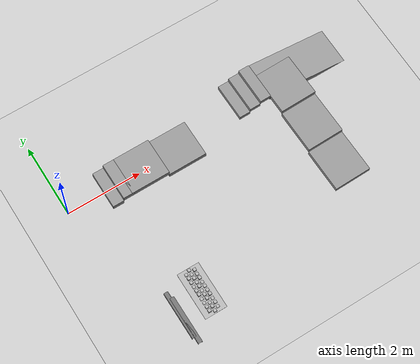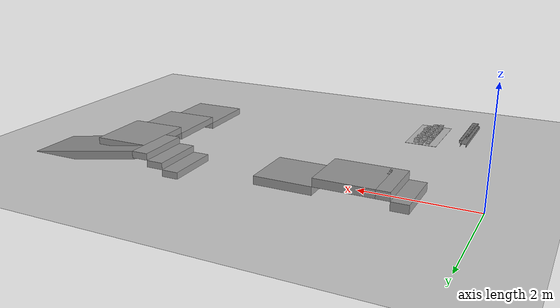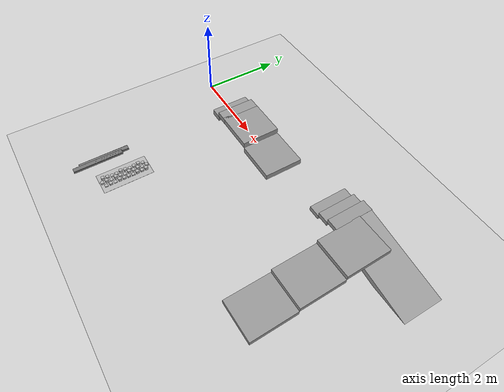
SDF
<sdf version="1.6">
 <world name="default">
  <light name="sun" type="directional">
   <pose>0 0 10 0 -0 0</pose>
   <diffuse>0.8 0.8 0.8 1</diffuse>
   <specular>0.1 0.1 0.1 1</specular>
   <attenuation>
    <range>1000</range>
    <constant>0.9</constant>
    <linear>0.01</linear>
    <quadratic>0.001</quadratic>
   </attenuation>
   <direction>-0.5 0.5 -1</direction>
  </light>
  <model name="ground_plane">
   <static>1</static>
   <link name="link">
    <collision name="collision">
     <geometry><plane><normal>0 0 1</normal><size>100 100</size></plane></geometry>
     <surface><friction><ode><mu>100</mu><mu2>50</mu2></ode></friction></surface>
    </collision>
    <visual name="visual">
     <cast_shadows>0</cast_shadows>
     <geometry><plane><normal>0 0 1</normal><size>100 100</size></plane></geometry>
     <material>
      <script><uri>file://media/materials/scripts/gazebo.material</uri><name>Gazebo/Grey</name></script>
     </material>
    </visual>
   </link>
  </model>
  <gravity>0 0 -9.8</gravity>
  <magnetic_field>6e-06 2.3e-05 -4.2e-05</magnetic_field>
  <atmosphere type="adiabatic"/>
  <physics name="default_physics" default="0" type="ode">
   <max_step_size>0.001</max_step_size>
   <real_time_factor>1</real_time_factor>
   <real_time_update_rate>1000</real_time_update_rate>
  </physics>
  <scene><ambient>0.4 0.4 0.4 1</ambient><background>0.7 0.7 0.7 1</background><shadows>1</shadows></scene>
  <spherical_coordinates>
   <surface_model>EARTH_WGS84</surface_model>
   <latitude_deg>0</latitude_deg>
   <longitude_deg>0</longitude_deg>
   <elevation>0</elevation>
   <heading_deg>0</heading_deg>
  </spherical_coordinates>
  <model name="frc2016_roughterrain">
   <static>1</static>
   <link name="link">
    <visual name="platform">
     <pose>0 0 0.08269 0 -0 0</pose>
     <geometry><box><size>1.27 0.5969 0.003175</size></box></geometry>
    </visual>
    <collision name="platform">
     <pose>0 0 0.08269 0 -0 0</pose>
     <geometry><box><size>1.27 0.5969 0.003175</size></box></geometry>
    </collision>
    <visual name="row1_block1_sm">
     <pose>0.51435 0.1143 0.09698 0 -0 0</pose>
     <geometry><box><size>0.0762 0.0762 0.0254</size></box></geometry>
    </visual>
    <collision name="row1_block1_sm">
     <pose>0.51435 0.1143 0.09698 0 -0 0</pose>
     <geometry><box><size>0.0762 0.0762 0.0254</size></box></geometry>
    </collision>
    <visual name="row1_block2_lg">
     <pose>0.40005 0.1143 0.12238 0 -0 0</pose>
     <geometry><box><size>0.0762 0.0762 0.0762</size></box></geometry>
    </visual>
    <collision name="row1_block2_lg">
     <pose>0.40005 0.1143 0.12238 0 -0 0</pose>
     <geometry><box><size>0.0762 0.0762 0.0762</size></box></geometry>
    </collision>
    <visual name="row1_block3_md">
     <pose>0.28575 0.1143 0.10968 0 -0 0</pose>
     <geometry><box><size>0.0762 0.0762 0.0508</size></box></geometry>
    </visual>
    <collision name="row1_block3_md">
     <pose>0.28575 0.1143 0.10968 0 -0 0</pose>
     <geometry><box><size>0.0762 0.0762 0.0508</size></box></geometry>
    </collision>
    <visual name="row1_block4_sm">
     <pose>0.17145 0.1143 0.09698 0 -0 0</pose>
     <geometry><box><size>0.0762 0.0762 0.0254</size></box></geometry>
    </visual>
    <collision name="row1_block4_sm">
     <pose>0.17145 0.1143 0.09698 0 -0 0</pose>
     <geometry><box><size>0.0762 0.0762 0.0254</size></box></geometry>
    </collision>
    <visual name="row1_block5_md">
     <pose>0.05715 0.1143 0.10968 0 -0 0</pose>
     <geometry><box><size>0.0762 0.0762 0.0508</size></box></geometry>
    </visual>
    <collision name="row1_block5_md">
     <pose>0.05715 0.1143 0.10968 0 -0 0</pose>
     <geometry><box><size>0.0762 0.0762 0.0508</size></box></geometry>
    </collision>
    <visual name="row1_block6_lg">
     <pose>-0.05715 0.1143 0.12238 0 -0 0</pose>
     <geometry><box><size>0.0762 0.0762 0.0762</size></box></geometry>
    </visual>
    <collision name="row1_block6_lg">
     <pose>-0.05715 0.1143 0.12238 0 -0 0</pose>
     <geometry><box><size>0.0762 0.0762 0.0762</size></box></geometry>
    </collision>
    <visual name="row1_block7_sm">
     <pose>-0.17145 0.1143 0.09698 0 -0 0</pose>
     <geometry><box><size>0.0762 0.0762 0.0254</size></box></geometry>
    </visual>
    <collision name="row1_block7_sm">
     <pose>-0.17145 0.1143 0.09698 0 -0 0</pose>
     <geometry><box><size>0.0762 0.0762 0.0254</size></box></geometry>
    </collision>
    <visual name="row1_block8_sm">
     <pose>-0.28575 0.1143 0.09698 0 -0 0</pose>
     <geometry><box><size>0.0762 0.0762 0.0254</size></box></geometry>
    </visual>
    <collision name="row1_block8_sm">
     <pose>-0.28575 0.1143 0.09698 0 -0 0</pose>
     <geometry><box><size>0.0762 0.0762 0.0254</size></box></geometry>
    </collision>
    <visual name="row1_block9_md">
     <pose>-0.40005 0.1143 0.10968 0 -0 0</pose>
     <geometry><box><size>0.0762 0.0762 0.0508</size></box></geometry>
    </visual>
    <collision name="row1_block9_md">
     <pose>-0.40005 0.1143 0.10968 0 -0 0</pose>
     <geometry><box><size>0.0762 0.0762 0.0508</size></box></geometry>
    </collision>
    <visual name="row1_block10_lg">
     <pose>-0.51435 0.1143 0.12238 0 -0 0</pose>
     <geometry><box><size>0.0762 0.0762 0.0762</size></box></geometry>
    </visual>
    <collision name="row1_block10_lg">
     <pose>-0.51435 0.1143 0.12238 0 -0 0</pose>
     <geometry><box><size>0.0762 0.0762 0.0762</size></box></geometry>
    </collision>
    <visual name="row2_block1_md">
     <pose>0.5715 0 0.10968 0 -0 0</pose>
     <geometry><box><size>0.0762 0.0762 0.0508</size></box></geometry>
    </visual>
    <collision name="row2_block1_md">
     <pose>0.5715 0 0.10968 0 -0 0</pose>
     <geometry><box><size>0.0762 0.0762 0.0508</size></box></geometry>
    </collision>
    <visual name="row2_block2_sm">
     <pose>0.4572 0 0.09698 0 -0 0</pose>
     <geometry><box><size>0.0762 0.0762 0.0254</size></box></geometry>
    </visual>
    <collision name="row2_block2_sm">
     <pose>0.4572 0 0.09698 0 -0 0</pose>
     <geometry><box><size>0.0762 0.0762 0.0254</size></box></geometry>
    </collision>
    <visual name="row2_block3_lg">
     <pose>0.3429 0 0.12238 0 -0 0</pose>
     <geometry><box><size>0.0762 0.0762 0.0762</size></box></geometry>
    </visual>
    <collision name="row2_block3_lg">
     <pose>0.3429 0 0.12238 0 -0 0</pose>
     <geometry><box><size>0.0762 0.0762 0.0762</size></box></geometry>
    </collision>
    <visual name="row2_block4_md">
     <pose>0.2286 0 0.10968 0 -0 0</pose>
     <geometry><box><size>0.0762 0.0762 0.0508</size></box></geometry>
    </visual>
    <collision name="row2_block4_md">
     <pose>0.2286 0 0.10968 0 -0 0</pose>
     <geometry><box><size>0.0762 0.0762 0.0508</size></box></geometry>
    </collision>
    <visual name="row2_block5_lg">
     <pose>0.1143 0 0.12238 0 -0 0</pose>
     <geometry><box><size>0.0762 0.0762 0.0762</size></box></geometry>
    </visual>
    <collision name="row2_block5_lg">
     <pose>0.1143 0 0.12238 0 -0 0</pose>
     <geometry><box><size>0.0762 0.0762 0.0762</size></box></geometry>
    </collision>
    <visual name="row2_block6_sm">
     <pose>0 0 0.09698 0 -0 0</pose>
     <geometry><box><size>0.0762 0.0762 0.0254</size></box></geometry>
    </visual>
    <collision name="row2_block6_sm">
     <pose>0 0 0.09698 0 -0 0</pose>
     <geometry><box><size>0.0762 0.0762 0.0254</size></box></geometry>
    </collision>
    <visual name="row2_block7_md">
     <pose>-0.1143 0 0.10968 0 -0 0</pose>
     <geometry><box><size>0.0762 0.0762 0.0508</size></box></geometry>
    </visual>
    <collision name="row2_block7_md">
     <pose>-0.1143 0 0.10968 0 -0 0</pose>
     <geometry><box><size>0.0762 0.0762 0.0508</size></box></geometry>
    </collision>
    <visual name="row2_block8_lg">
     <pose>-0.2286 0 0.12238 0 -0 0</pose>
     <geometry><box><size>0.0762 0.0762 0.0762</size></box></geometry>
    </visual>
    <collision name="row2_block8_lg">
     <pose>-0.2286 0 0.12238 0 -0 0</pose>
     <geometry><box><size>0.0762 0.0762 0.0762</size></box></geometry>
    </collision>
    <visual name="row2_block9_sm">
     <pose>-0.3429 0 0.09698 0 -0 0</pose>
     <geometry><box><size>0.0762 0.0762 0.0254</size></box></geometry>
    </visual>
    <collision name="row2_block9_sm">
     <pose>-0.3429 0 0.09698 0 -0 0</pose>
     <geometry><box><size>0.0762 0.0762 0.0254</size></box></geometry>
    </collision>
    <visual name="row2_block10_lg">
     <pose>-0.4572 0 0.12238 0 -0 0</pose>
     <geometry><box><size>0.0762 0.0762 0.0762</size></box></geometry>
    </visual>
    <collision name="row2_block10_lg">
     <pose>-0.4572 0 0.12238 0 -0 0</pose>
     <geometry><box><size>0.0762 0.0762 0.0762</size></box></geometry>
    </collision>
    <visual name="row2_block11_md">
     <pose>-0.5715 0 0.10968 0 -0 0</pose>
     <geometry><box><size>0.0762 0.0762 0.0508</size></box></geometry>
    </visual>
    <collision name="row2_block11_md">
     <pose>-0.5715 0 0.10968 0 -0 0</pose>
     <geometry><box><size>0.0762 0.0762 0.0508</size></box></geometry>
    </collision>
    <visual name="row3_block1_lg">
     <pose>0.51435 -0.1143 0.12238 0 -0 0</pose>
     <geometry><box><size>0.0762 0.0762 0.0762</size></box></geometry>
    </visual>
    <collision name="row3_block1_lg">
     <pose>0.51435 -0.1143 0.12238 0 -0 0</pose>
     <geometry><box><size>0.0762 0.0762 0.0762</size></box></geometry>
    </collision>
    <visual name="row3_block2_md">
     <pose>0.40005 -0.1143 0.10968 0 -0 0</pose>
     <geometry><box><size>0.0762 0.0762 0.0508</size></box></geometry>
    </visual>
    <collision name="row3_block2_md">
     <pose>0.40005 -0.1143 0.10968 0 -0 0</pose>
     <geometry><box><size>0.0762 0.0762 0.0508</size></box></geometry>
    </collision>
    <visual name="row3_block3_lg">
     <pose>0.28575 -0.1143 0.12238 0 -0 0</pose>
     <geometry><box><size>0.0762 0.0762 0.0762</size></box></geometry>
    </visual>
    <collision name="row3_block3_lg">
     <pose>0.28575 -0.1143 0.12238 0 -0 0</pose>
     <geometry><box><size>0.0762 0.0762 0.0762</size></box></geometry>
    </collision>
    <visual name="row3_block4_sm">
     <pose>0.17145 -0.1143 0.09698 0 -0 0</pose>
     <geometry><box><size>0.0762 0.0762 0.0254</size></box></geometry>
    </visual>
    <collision name="row3_block4_sm">
     <pose>0.17145 -0.1143 0.09698 0 -0 0</pose>
     <geometry><box><size>0.0762 0.0762 0.0254</size></box></geometry>
    </collision>
    <visual name="row3_block5_md">
     <pose>0.05715 -0.1143 0.10968 0 -0 0</pose>
     <geometry><box><size>0.0762 0.0762 0.0508</size></box></geometry>
    </visual>
    <collision name="row3_block5_md">
     <pose>0.05715 -0.1143 0.10968 0 -0 0</pose>
     <geometry><box><size>0.0762 0.0762 0.0508</size></box></geometry>
    </collision>
    <visual name="row3_block6_md">
     <pose>-0.05715 -0.1143 0.10968 0 -0 0</pose>
     <geometry><box><size>0.0762 0.0762 0.0508</size></box></geometry>
    </visual>
    <collision name="row3_block6_md">
     <pose>-0.05715 -0.1143 0.10968 0 -0 0</pose>
     <geometry><box><size>0.0762 0.0762 0.0508</size></box></geometry>
    </collision>
    <visual name="row3_block7_lg">
     <pose>-0.17145 -0.1143 0.12238 0 -0 0</pose>
     <geometry><box><size>0.0762 0.0762 0.0762</size></box></geometry>
    </visual>
    <collision name="row3_block7_lg">
     <pose>-0.17145 -0.1143 0.12238 0 -0 0</pose>
     <geometry><box><size>0.0762 0.0762 0.0762</size></box></geometry>
    </collision>
    <visual name="row3_block8_sm">
     <pose>-0.28575 -0.1143 0.09698 0 -0 0</pose>
     <geometry><box><size>0.0762 0.0762 0.0254</size></box></geometry>
    </visual>
    <collision name="row3_block8_sm">
     <pose>-0.28575 -0.1143 0.09698 0 -0 0</pose>
     <geometry><box><size>0.0762 0.0762 0.0254</size></box></geometry>
    </collision>
    <visual name="row3_block9_md">
     <pose>-0.40005 -0.1143 0.10968 0 -0 0</pose>
     <geometry><box><size>0.0762 0.0762 0.0508</size></box></geometry>
    </visual>
    <collision name="row3_block9_md">
     <pose>-0.40005 -0.1143 0.10968 0 -0 0</pose>
     <geometry><box><size>0.0762 0.0762 0.0508</size></box></geometry>
    </collision>
    <visual name="row3_block10_sm">
     <pose>-0.51435 -0.1143 0.09698 0 -0 0</pose>
     <geometry><box><size>0.0762 0.0762 0.0254</size></box></geometry>
    </visual>
    <collision name="row3_block10_sm">
     <pose>-0.51435 -0.1143 0.09698 0 -0 0</pose>
     <geometry><box><size>0.0762 0.0762 0.0254</size></box></geometry>
    </collision>
   </link>
   <pose>1.70324 -3.32243 -0.086398 0 -0 1.56747</pose>
  </model>
  <model name="frc2016_rockwall_clone_0">
   <static>1</static>
   <link name="link">
    <inertial>
     <mass>10</mass>
     <pose>0 0 0.08974 0 -0 0</pose>
     <inertia><ixx>0.327091</ixx><ixy>0</ixy><ixz>0</ixz><iyy>1.37417</iyy><iyz>0</iyz><izz>1.64109</izz></inertia>
    </inertial>
    <visual name="platform">
     <pose>0 0 0.06432 0 -0 0</pose>
     <geometry><box><size>1.27 0.5969 0.003175</size></box></geometry>
    </visual>
    <collision name="platform">
     <pose>0 0 0.06432 0 -0 0</pose>
     <geometry><box><size>1.27 0.5969 0.003175</size></box></geometry>
    </collision>
    <visual name="up1">
     <pose>0 0.05166 0.12537 0 -0 0</pose>
     <geometry><box><size>1.27 0.00462 0.11892</size></box></geometry>
     <material><ambient>0.46 0.46 0.46 1</ambient><diffuse>0.46 0.46 0.46 1</diffuse></material>
    </visual>
    <collision name="up1">
     <pose>0 0.05166 0.12537 0 -0 0</pose>
     <geometry><box><size>1.27 0.00462 0.11892</size></box></geometry>
    </collision>
    <visual name="up2">
     <pose>0 -0.05801 0.12537 0 -0 0</pose>
     <geometry><box><size>1.27 0.00462 0.11892</size></box></geometry>
     <material><ambient>0.46 0.46 0.46 1</ambient><diffuse>0.46 0.46 0.46 1</diffuse></material>
    </visual>
    <collision name="up2">
     <pose>0 -0.05801 0.12537 0 -0 0</pose>
     <geometry><box><size>1.27 0.00462 0.11892</size></box></geometry>
    </collision>
    <visual name="top">
     <pose>0 -0.00249 0.18252 0 -0 0</pose>
     <geometry><box><size>1.27 0.1143 0.00462</size></box></geometry>
     <material><ambient>0.46 0.46 0.46 1</ambient><diffuse>0.46 0.46 0.46 1</diffuse></material>
    </visual>
    <collision name="top">
     <pose>0 -0.00249 0.18252 0 -0 0</pose>
     <geometry><box><size>1.27 0.1143 0.00462</size></box></geometry>
    </collision>
   </link>
   <pose>0.952839 -3.55943 -0.132648 0 0 -1.5708</pose>
  </model>
  <model name="frc2016_rockwall_clone_0_clone">
   <static>1</static>
   <link name="link">
    <inertial>
     <mass>10</mass>
     <pose>0 0 0.08974 0 -0 0</pose>
     <inertia><ixx>0.327091</ixx><ixy>0</ixy><ixz>0</ixz><iyy>1.37417</iyy><iyz>0</iyz><izz>1.64109</izz></inertia>
    </inertial>
    <visual name="platform">
     <pose>0 0 0.06432 0 -0 0</pose>
     <geometry><box><size>1.27 0.5969 0.003175</size></box></geometry>
    </visual>
    <collision name="platform">
     <pose>0 0 0.06432 0 -0 0</pose>
     <geometry><box><size>1.27 0.5969 0.003175</size></box></geometry>
    </collision>
    <visual name="up1">
     <pose>0 0.05166 0.12537 0 -0 0</pose>
     <geometry><box><size>1.27 0.00462 0.11892</size></box></geometry>
     <material><ambient>0.46 0.46 0.46 1</ambient><diffuse>0.46 0.46 0.46 1</diffuse></material>
    </visual>
    <collision name="up1">
     <pose>0 0.05166 0.12537 0 -0 0</pose>
     <geometry><box><size>1.27 0.00462 0.11892</size></box></geometry>
    </collision>
    <visual name="up2">
     <pose>0 -0.05801 0.12537 0 -0 0</pose>
     <geometry><box><size>1.27 0.00462 0.11892</size></box></geometry>
     <material><ambient>0.46 0.46 0.46 1</ambient><diffuse>0.46 0.46 0.46 1</diffuse></material>
    </visual>
    <collision name="up2">
     <pose>0 -0.05801 0.12537 0 -0 0</pose>
     <geometry><box><size>1.27 0.00462 0.11892</size></box></geometry>
    </collision>
    <visual name="top">
     <pose>0 -0.00249 0.18252 0 -0 0</pose>
     <geometry><box><size>1.27 0.1143 0.00462</size></box></geometry>
     <material><ambient>0.46 0.46 0.46 1</ambient><diffuse>0.46 0.46 0.46 1</diffuse></material>
    </visual>
    <collision name="top">
     <pose>0 -0.00249 0.18252 0 -0 0</pose>
     <geometry><box><size>1.27 0.1143 0.00462</size></box></geometry>
    </collision>
   </link>
   <pose>1.01065 -3.73654 -0.132648 0 0 -1.5708</pose>
  </model>
  <model name="Untitled222_0">
   <pose>6.26076 -1.15856 0 0 0 -3.12388</pose>
   <link name="Stairs_3">
    <visual name="Stairs_3_Visual_0">
     <pose>0 1.16667 0.06 0 -0 0</pose>
     <geometry><box><size>1 1.16667 0.12</size></box></geometry>
     <material>
      <script><uri>file://media/materials/scripts/gazebo.material</uri><name>Gazebo/Grey</name></script>
      <ambient>1 1 1 1</ambient>
     </material>
     <meta><layer>0</layer></meta>
    </visual>
    <collision name="Stairs_3_Collision_0">
     <geometry><box><size>1 1.16667 0.12</size></box></geometry>
     <pose>0 1.16667 0.06 0 -0 0</pose>
    </collision>
    <visual name="Stairs_3_Visual_1">
     <pose>0 -0 0.18 0 -0 0</pose>
     <geometry><box><size>1 1.16667 0.12</size></box></geometry>
     <material>
      <script><uri>file://media/materials/scripts/gazebo.material</uri><name>Gazebo/Grey</name></script>
      <ambient>1 1 1 1</ambient>
     </material>
     <meta><layer>0</layer></meta>
    </visual>
    <collision name="Stairs_3_Collision_1">
     <geometry><box><size>1 1.16667 0.12</size></box></geometry>
     <pose>0 -0 0.18 0 -0 0</pose>
    </collision>
    <visual name="Stairs_3_Visual_2">
     <pose>0 -1.16667 0.3 0 -0 0</pose>
     <geometry><box><size>1 1.16667 0.12</size></box></geometry>
     <material>
      <script><uri>file://media/materials/scripts/gazebo.material</uri><name>Gazebo/Grey</name></script>
      <ambient>1 1 1 1</ambient>
     </material>
     <meta><layer>0</layer></meta>
    </visual>
    <collision name="Stairs_3_Collision_2">
     <geometry><box><size>1 1.16667 0.12</size></box></geometry>
     <pose>0 -1.16667 0.3 0 -0 0</pose>
    </collision>
   </link>
   <static>1</static>
  </model>
  <model name="Untitled111">
   <pose>5.29781 0.421682 0 0 -0 1.57896</pose>
   <link name="Stairs_1">
    <visual name="Stairs_1_Visual_0">
     <pose>0 0.3 0.06 0 -0 0</pose>
     <geometry><box><size>1 0.3 0.12</size></box></geometry>
     <material>
      <script><uri>file://media/materials/scripts/gazebo.material</uri><name>Gazebo/Grey</name></script>
      <ambient>1 1 1 1</ambient>
     </material>
     <meta><layer>0</layer></meta>
    </visual>
    <collision name="Stairs_1_Collision_0">
     <geometry><box><size>1 0.3 0.12</size></box></geometry>
     <pose>0 0.3 0.06 0 -0 0</pose>
    </collision>
    <visual name="Stairs_1_Visual_1">
     <pose>0 0 0.18 0 -0 0</pose>
     <geometry><box><size>1 0.3 0.12</size></box></geometry>
     <material>
      <script><uri>file://media/materials/scripts/gazebo.material</uri><name>Gazebo/Grey</name></script>
      <ambient>1 1 1 1</ambient>
     </material>
     <meta><layer>0</layer></meta>
    </visual>
    <collision name="Stairs_1_Collision_1">
     <geometry><box><size>1 0.3 0.12</size></box></geometry>
     <pose>0 0 0.18 0 -0 0</pose>
    </collision>
    <visual name="Stairs_1_Visual_2">
     <pose>0 -0.3 0.3 0 -0 0</pose>
     <geometry><box><size>1 0.3 0.12</size></box></geometry>
     <material>
      <script><uri>file://media/materials/scripts/gazebo.material</uri><name>Gazebo/Grey</name></script>
      <ambient>1 1 1 1</ambient>
     </material>
     <meta><layer>0</layer></meta>
    </visual>
    <collision name="Stairs_1_Collision_2">
     <geometry><box><size>1 0.3 0.12</size></box></geometry>
     <pose>0 -0.3 0.3 0 -0 0</pose>
    </collision>
   </link>
   <static>1</static>
  </model>
  <model name="Untitled33">
   <pose>8.1967 0.412721 -0.118222 1.40867 0 -1.5708</pose>
   <link name="Wall_0">
    <collision name="Wall_0_Collision">
     <geometry><box><size>1 0.15 2.5</size></box></geometry>
     <pose>0 0 1.25 0 -0 0</pose>
    </collision>
    <visual name="Wall_0_Visual">
     <pose>0 0 1.25 0 -0 0</pose>
     <geometry><box><size>1 0.15 2.5</size></box></geometry>
     <material>
      <script><uri>file://media/materials/scripts/gazebo.material</uri><name>Gazebo/Grey</name></script>
      <ambient>1 1 1 1</ambient>
     </material>
     <meta><layer>0</layer></meta>
    </visual>
   </link>
   <static>1</static>
  </model>
  <model name="Untitledq">
   <pose>2.57038 0.034587 0 0 0 -1.5708</pose>
   <link name="Stairs_4">
    <visual name="Stairs_4_Visual_0">
     <pose>-0 0.521231 0.075 0 -0 0</pose>
     <geometry><box><size>1 1.04246 0.15</size></box></geometry>
     <material>
      <script><uri>file://media/materials/scripts/gazebo.material</uri><name>Gazebo/Grey</name></script>
      <ambient>1 1 1 1</ambient>
     </material>
     <meta><layer>0</layer></meta>
    </visual>
    <collision name="Stairs_4_Collision_0">
     <geometry><box><size>1 1.04246 0.15</size></box></geometry>
     <pose>-0 0.521231 0.075 0 -0 0</pose>
    </collision>
    <visual name="Stairs_4_Visual_1">
     <pose>-0 -0.521231 0.225 0 -0 0</pose>
     <geometry><box><size>1 1.04246 0.15</size></box></geometry>
     <material>
      <script><uri>file://media/materials/scripts/gazebo.material</uri><name>Gazebo/Grey</name></script>
      <ambient>1 1 1 1</ambient>
     </material>
     <meta><layer>0</layer></meta>
    </visual>
    <collision name="Stairs_4_Collision_1">
     <geometry><box><size>1 1.04246 0.15</size></box></geometry>
     <pose>-0 -0.521231 0.225 0 -0 0</pose>
    </collision>
   </link>
   <static>1</static>
  </model>
  <model name="Untitledwww">
   <pose>1.28895 0.034171 0 0 -0 1.5708</pose>
   <link name="Stairs_6">
    <visual name="Stairs_6_Visual_0">
     <pose>0 0.15 0.075 0 -0 0</pose>
     <geometry><box><size>1 0.3 0.15</size></box></geometry>
     <material>
      <script><uri>file://media/materials/scripts/gazebo.material</uri><name>Gazebo/Grey</name></script>
      <ambient>1 1 1 1</ambient>
     </material>
     <meta><layer>0</layer></meta>
    </visual>
    <collision name="Stairs_6_Collision_0">
     <geometry><box><size>1 0.3 0.15</size></box></geometry>
     <pose>0 0.15 0.075 0 -0 0</pose>
     <surface><friction><ode><mu>100</mu><mu2>50</mu2></ode></friction></surface>
    </collision>
    <visual name="Stairs_6_Visual_1">
     <pose>0 -0.15 0.225 0 -0 0</pose>
     <geometry><box><size>1 0.3 0.15</size></box></geometry>
     <material>
      <script><uri>file://media/materials/scripts/gazebo.material</uri><name>Gazebo/Grey</name></script>
      <ambient>1 1 1 1</ambient>
     </material>
     <meta><layer>0</layer></meta>
    </visual>
    <collision name="Stairs_6_Collision_1">
     <geometry><box><size>1 0.3 0.15</size></box></geometry>
     <pose>0 -0.15 0.225 0 -0 0</pose>
     <surface><friction><ode><mu>100</mu><mu2>50</mu2></ode></friction></surface>
    </collision>
   </link>
   <static>1</static>
  </model>
 </world>
</sdf>
